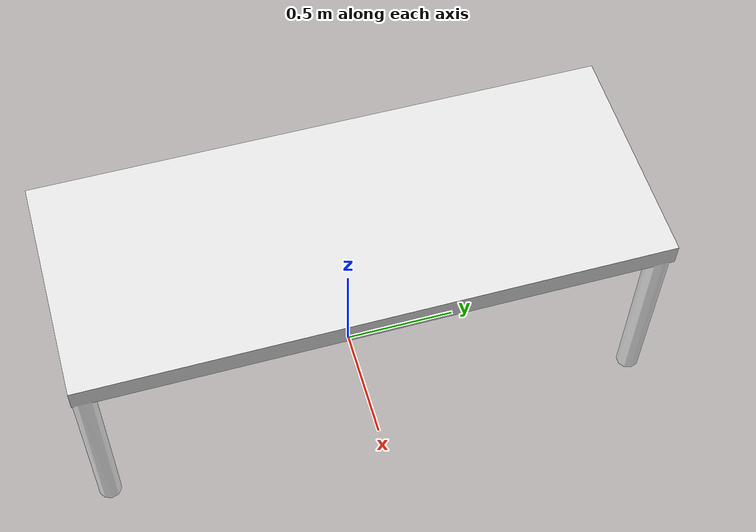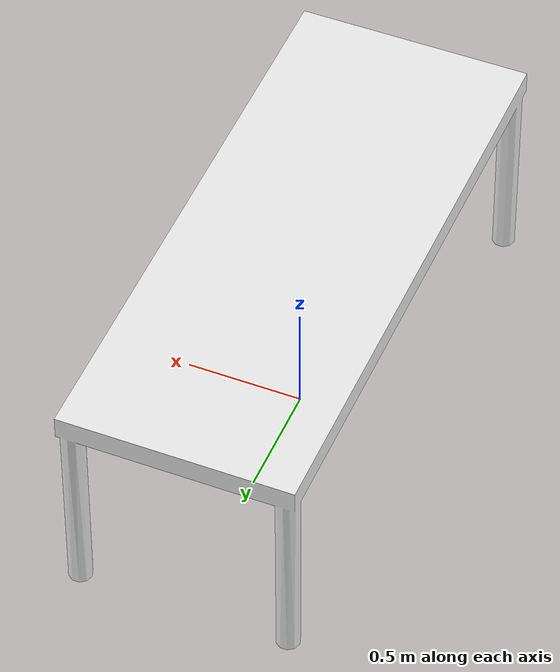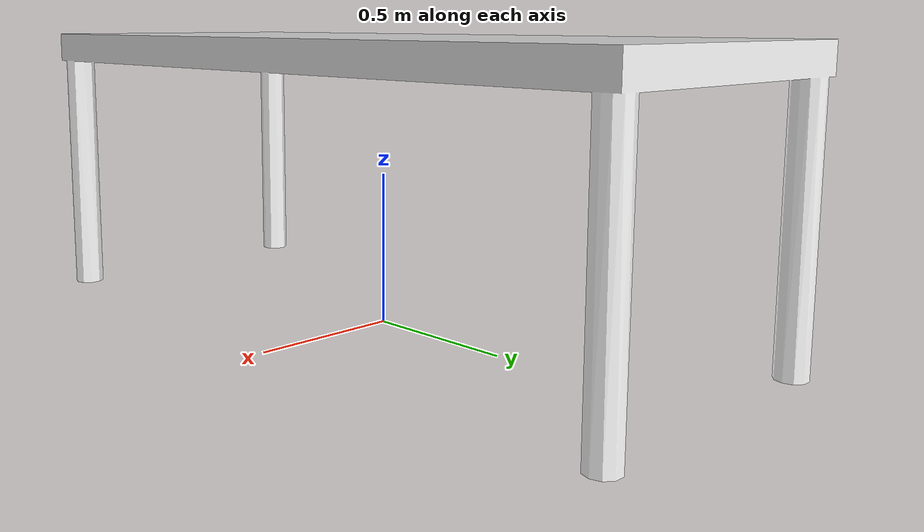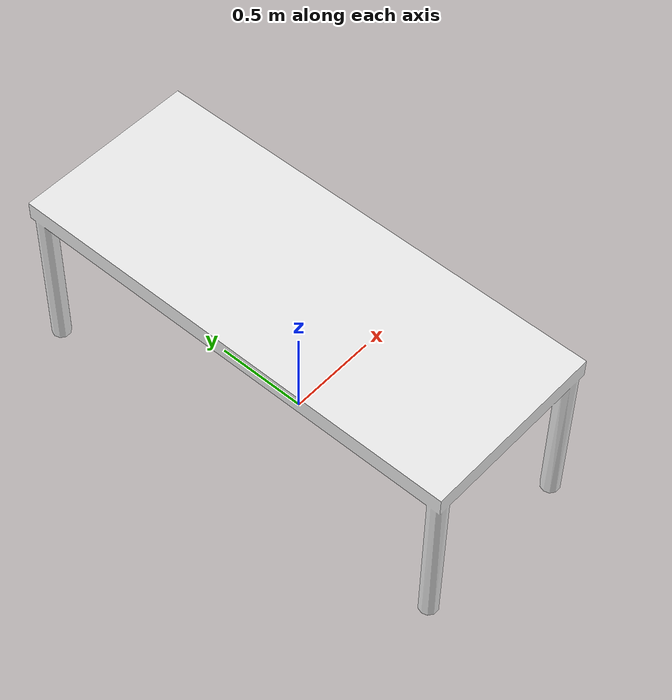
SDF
<?xml version='1.0'?>
<sdf version="1.6">
<model name="meeting_table">
  <pose>0 0 0 0 0 0</pose>
    <link name="link">
      <inertial>
        <pose>0 0 0.854 0 0 0</pose>
        <mass>21</mass>
        <inertia>
          <ixx>13.3713</ixx>
          <ixy>0.0</ixy>
          <ixz>0.0</ixz>
          <iyy>2.5473</iyy>
          <iyz>0.0</iyz>
          <izz>14.8151</izz>
        </inertia>
      </inertial>
      <collision name="collision">
        <geometry>
          <mesh>
            <uri>model://meeting_table/meeting_table.dae</uri>
          </mesh>
        </geometry>
      </collision>
      <visual name="visual">
        <geometry>
          <mesh>
            <uri>model://meeting_table/meeting_table.dae</uri>
          </mesh>
        </geometry>
      </visual>
    </link>
  </model>
</sdf>
